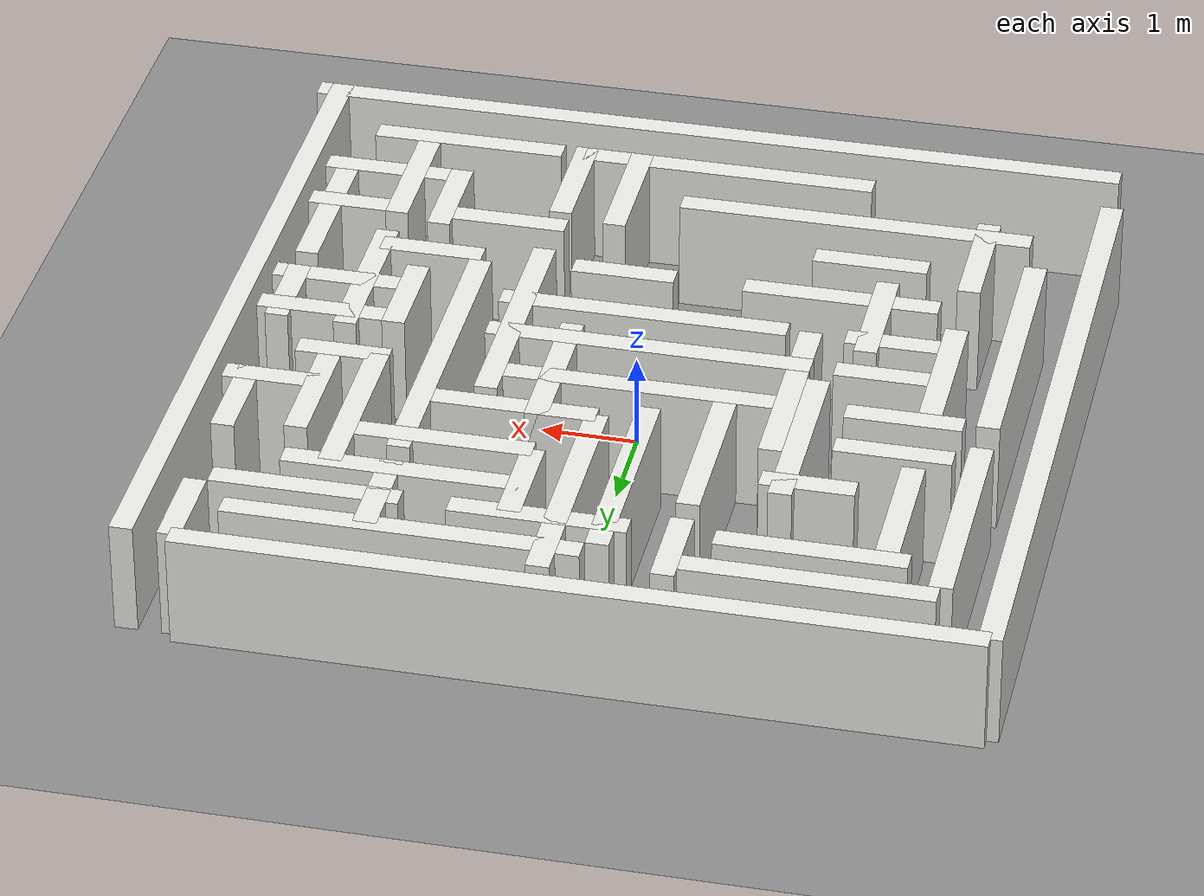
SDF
<sdf version="1.10">
 <world name="tugbot_maze_world_image_faithful">
  <plugin name="gz::sim::systems::Physics" filename="gz-sim-physics-system"/>
  <plugin name="gz::sim::systems::UserCommands" filename="gz-sim-user-commands-system"/>
  <plugin name="gz::sim::systems::SceneBroadcaster" filename="gz-sim-scene-broadcaster-system"/>
  <plugin name="gz::sim::systems::Sensors" filename="gz-sim-sensors-system">
   <render_engine>ogre2</render_engine>
  </plugin>
  <plugin name="gz::sim::systems::Imu" filename="gz-sim-imu-system"/>
  <scene>
   <shadows>false</shadows>
   <ambient>0.55 0.55 0.55 1</ambient>
   <background>0.70 0.72 0.74 1</background>
  </scene>
  <physics name="3ms" type="ode">
   <max_step_size>0.003</max_step_size>
   <real_time_factor>1</real_time_factor>
   <real_time_update_rate>1000</real_time_update_rate>
  </physics>
  <gravity>0 0 -9.8</gravity>
  <magnetic_field>5.5645e-06 2.28758e-05 -4.23884e-05</magnetic_field>
  <atmosphere type="adiabatic"/>
  <model name="ground_plane">
   <static>true</static>
   <link name="link">
    <collision name="collision">
     <geometry><plane><normal>0 0 1</normal><size>1 1</size></plane></geometry>
    </collision>
    <visual name="visual">
     <geometry><plane><normal>0 0 1</normal><size>20 20</size></plane></geometry>
     <material>
      <ambient>0.55 0.55 0.55 1</ambient>
      <diffuse>0.55 0.55 0.55 1</diffuse>
      <specular>0.2 0.2 0.2 1</specular>
     </material>
    </visual>
   </link>
  </model>
  <model name="maze_exit_marker">
   <static>true</static>
   <pose>4.000 3.000 0.01 0 0 0</pose>
   <link name="link">
    <visual name="visual">
     <geometry><cylinder><radius>0.30</radius><length>0.02</length></cylinder></geometry>
     <material><ambient>0 0.8 0.2 0.7</ambient><diffuse>0 0.8 0.2 0.7</diffuse></material>
    </visual>
   </link>
  </model>
  <model name="maze_wall_outer_001_outer_bottom">
   <static>true</static>
   <pose>0.060 -4.200 0.600 0 0 0</pose>
   <link name="link">
    <collision name="collision"><geometry><box><size>8.760 0.240 1.200</size></box></geometry></collision>
    <visual name="visual">
     <geometry><box><size>8.760 0.240 1.200</size></box></geometry>
     <material>
      <ambient>0.920 0.920 0.900 1.000</ambient>
      <diffuse>0.920 0.920 0.900 1.000</diffuse>
      <specular>0.2 0.2 0.2 1</specular>
     </material>
    </visual>
   </link>
  </model>
  <model name="maze_wall_outer_002_outer_top">
   <static>true</static>
   <pose>-0.300 4.200 0.600 0 0 0</pose>
   <link name="link">
    <collision name="collision"><geometry><box><size>8.040 0.240 1.200</size></box></geometry></collision>
    <visual name="visual">
     <geometry><box><size>8.040 0.240 1.200</size></box></geometry>
     <material>
      <ambient>0.920 0.920 0.900 1.000</ambient>
      <diffuse>0.920 0.920 0.900 1.000</diffuse>
      <specular>0.2 0.2 0.2 1</specular>
     </material>
    </visual>
   </link>
  </model>
  <model name="maze_wall_outer_003_outer_left">
   <static>true</static>
   <pose>-4.320 0.300 0.600 0 0 0</pose>
   <link name="link">
    <collision name="collision"><geometry><box><size>0.240 7.800 1.200</size></box></geometry></collision>
    <visual name="visual">
     <geometry><box><size>0.240 7.800 1.200</size></box></geometry>
     <material>
      <ambient>0.920 0.920 0.900 1.000</ambient>
      <diffuse>0.920 0.920 0.900 1.000</diffuse>
      <specular>0.2 0.2 0.2 1</specular>
     </material>
    </visual>
   </link>
  </model>
  <model name="maze_wall_outer_004_outer_right">
   <static>true</static>
   <pose>4.200 -0.060 0.600 0 0 0</pose>
   <link name="link">
    <collision name="collision"><geometry><box><size>0.240 8.520 1.200</size></box></geometry></collision>
    <visual name="visual">
     <geometry><box><size>0.240 8.520 1.200</size></box></geometry>
     <material>
      <ambient>0.920 0.920 0.900 1.000</ambient>
      <diffuse>0.920 0.920 0.900 1.000</diffuse>
      <specular>0.2 0.2 0.2 1</specular>
     </material>
    </visual>
   </link>
  </model>
  <model name="maze_wall_seg_005_h02_upper_left">
   <static>true</static>
   <pose>-2.460 3.600 0.600 0 0 0</pose>
   <link name="link">
    <collision name="collision"><geometry><box><size>2.520 0.240 1.200</size></box></geometry></collision>
    <visual name="visual">
     <geometry><box><size>2.520 0.240 1.200</size></box></geometry>
     <material>
      <ambient>0.920 0.920 0.900 1.000</ambient>
      <diffuse>0.920 0.920 0.900 1.000</diffuse>
      <specular>0.2 0.2 0.2 1</specular>
     </material>
    </visual>
   </link>
  </model>
  <model name="maze_wall_seg_006_h03_upper_right">
   <static>true</static>
   <pose>1.560 3.600 0.600 0 0 0</pose>
   <link name="link">
    <collision name="collision"><geometry><box><size>3.600 0.240 1.200</size></box></geometry></collision>
    <visual name="visual">
     <geometry><box><size>3.600 0.240 1.200</size></box></geometry>
     <material>
      <ambient>0.920 0.920 0.900 1.000</ambient>
      <diffuse>0.920 0.920 0.900 1.000</diffuse>
      <specular>0.2 0.2 0.2 1</specular>
     </material>
    </visual>
   </link>
  </model>
  <model name="maze_wall_seg_007_h04_left_upper_shelf">
   <static>true</static>
   <pose>-2.400 3.120 0.600 0 0 0</pose>
   <link name="link">
    <collision name="collision"><geometry><box><size>1.920 0.240 1.200</size></box></geometry></collision>
    <visual name="visual">
     <geometry><box><size>1.920 0.240 1.200</size></box></geometry>
     <material>
      <ambient>0.920 0.920 0.900 1.000</ambient>
      <diffuse>0.920 0.920 0.900 1.000</diffuse>
      <specular>0.2 0.2 0.2 1</specular>
     </material>
    </visual>
   </link>
  </model>
  <model name="maze_wall_seg_008_h05_upper_center_shelf">
   <static>true</static>
   <pose>0.300 3.120 0.600 0 0 0</pose>
   <link name="link">
    <collision name="collision"><geometry><box><size>1.800 0.240 1.200</size></box></geometry></collision>
    <visual name="visual">
     <geometry><box><size>1.800 0.240 1.200</size></box></geometry>
     <material>
      <ambient>0.920 0.920 0.900 1.000</ambient>
      <diffuse>0.920 0.920 0.900 1.000</diffuse>
      <specular>0.2 0.2 0.2 1</specular>
     </material>
    </visual>
   </link>
  </model>
  <model name="maze_wall_seg_009_h06_upper_right_shelf">
   <static>true</static>
   <pose>2.640 3.120 0.600 0 0 0</pose>
   <link name="link">
    <collision name="collision"><geometry><box><size>1.920 0.240 1.200</size></box></geometry></collision>
    <visual name="visual">
     <geometry><box><size>1.920 0.240 1.200</size></box></geometry>
     <material>
      <ambient>0.920 0.920 0.900 1.000</ambient>
      <diffuse>0.920 0.920 0.900 1.000</diffuse>
      <specular>0.2 0.2 0.2 1</specular>
     </material>
    </visual>
   </link>
  </model>
  <model name="maze_wall_seg_010_h08_upper_right_mid">
   <static>true</static>
   <pose>1.800 2.640 0.600 0 0 0</pose>
   <link name="link">
    <collision name="collision"><geometry><box><size>2.400 0.240 1.200</size></box></geometry></collision>
    <visual name="visual">
     <geometry><box><size>2.400 0.240 1.200</size></box></geometry>
     <material>
      <ambient>0.920 0.920 0.900 1.000</ambient>
      <diffuse>0.920 0.920 0.900 1.000</diffuse>
      <specular>0.2 0.2 0.2 1</specular>
     </material>
    </visual>
   </link>
  </model>
  <model name="maze_wall_seg_011_h10_left_center_short">
   <static>true</static>
   <pose>-2.160 2.040 0.600 0 0 0</pose>
   <link name="link">
    <collision name="collision"><geometry><box><size>0.960 0.240 1.200</size></box></geometry></collision>
    <visual name="visual">
     <geometry><box><size>0.960 0.240 1.200</size></box></geometry>
     <material>
      <ambient>0.920 0.920 0.900 1.000</ambient>
      <diffuse>0.920 0.920 0.900 1.000</diffuse>
      <specular>0.2 0.2 0.2 1</specular>
     </material>
    </visual>
   </link>
  </model>
  <model name="maze_wall_seg_012_h11_center_right_long">
   <static>true</static>
   <pose>1.620 2.040 0.600 0 0 0</pose>
   <link name="link">
    <collision name="collision"><geometry><box><size>2.040 0.240 1.200</size></box></geometry></collision>
    <visual name="visual">
     <geometry><box><size>2.040 0.240 1.200</size></box></geometry>
     <material>
      <ambient>0.920 0.920 0.900 1.000</ambient>
      <diffuse>0.920 0.920 0.900 1.000</diffuse>
      <specular>0.2 0.2 0.2 1</specular>
     </material>
    </visual>
   </link>
  </model>
  <model name="maze_wall_seg_013_h13_left_inner">
   <static>true</static>
   <pose>-2.880 1.320 0.600 0 0 0</pose>
   <link name="link">
    <collision name="collision"><geometry><box><size>1.200 0.240 1.200</size></box></geometry></collision>
    <visual name="visual">
     <geometry><box><size>1.200 0.240 1.200</size></box></geometry>
     <material>
      <ambient>0.920 0.920 0.900 1.000</ambient>
      <diffuse>0.920 0.920 0.900 1.000</diffuse>
      <specular>0.2 0.2 0.2 1</specular>
     </material>
    </visual>
   </link>
  </model>
  <model name="maze_wall_seg_014_h14_center">
   <static>true</static>
   <pose>0.960 1.320 0.600 0 0 0</pose>
   <link name="link">
    <collision name="collision"><geometry><box><size>1.680 0.240 1.200</size></box></geometry></collision>
    <visual name="visual">
     <geometry><box><size>1.680 0.240 1.200</size></box></geometry>
     <material>
      <ambient>0.920 0.920 0.900 1.000</ambient>
      <diffuse>0.920 0.920 0.900 1.000</diffuse>
      <specular>0.2 0.2 0.2 1</specular>
     </material>
    </visual>
   </link>
  </model>
  <model name="maze_wall_seg_015_h15_right_inner_shelf">
   <static>true</static>
   <pose>3.480 1.320 0.600 0 0 0</pose>
   <link name="link">
    <collision name="collision"><geometry><box><size>0.960 0.240 1.200</size></box></geometry></collision>
    <visual name="visual">
     <geometry><box><size>0.960 0.240 1.200</size></box></geometry>
     <material>
      <ambient>0.920 0.920 0.900 1.000</ambient>
      <diffuse>0.920 0.920 0.900 1.000</diffuse>
      <specular>0.2 0.2 0.2 1</specular>
     </material>
    </visual>
   </link>
  </model>
  <model name="maze_wall_seg_016_h16_left_middle_shelf">
   <static>true</static>
   <pose>-2.880 0.720 0.600 0 0 0</pose>
   <link name="link">
    <collision name="collision"><geometry><box><size>1.200 0.240 1.200</size></box></geometry></collision>
    <visual name="visual">
     <geometry><box><size>1.200 0.240 1.200</size></box></geometry>
     <material>
      <ambient>0.920 0.920 0.900 1.000</ambient>
      <diffuse>0.920 0.920 0.900 1.000</diffuse>
      <specular>0.2 0.2 0.2 1</specular>
     </material>
    </visual>
   </link>
  </model>
  <model name="maze_wall_seg_017_h17_central_long">
   <static>true</static>
   <pose>-0.180 0.720 0.600 0 0 0</pose>
   <link name="link">
    <collision name="collision"><geometry><box><size>2.760 0.240 1.200</size></box></geometry></collision>
    <visual name="visual">
     <geometry><box><size>2.760 0.240 1.200</size></box></geometry>
     <material>
      <ambient>0.920 0.920 0.900 1.000</ambient>
      <diffuse>0.920 0.920 0.900 1.000</diffuse>
      <specular>0.2 0.2 0.2 1</specular>
     </material>
    </visual>
   </link>
  </model>
  <model name="maze_wall_seg_018_h18_right_middle_short">
   <static>true</static>
   <pose>2.880 0.720 0.600 0 0 0</pose>
   <link name="link">
    <collision name="collision"><geometry><box><size>0.960 0.240 1.200</size></box></geometry></collision>
    <visual name="visual">
     <geometry><box><size>0.960 0.240 1.200</size></box></geometry>
     <material>
      <ambient>0.920 0.920 0.900 1.000</ambient>
      <diffuse>0.920 0.920 0.900 1.000</diffuse>
      <specular>0.2 0.2 0.2 1</specular>
     </material>
    </visual>
   </link>
  </model>
  <model name="maze_wall_seg_019_h19_left_middle_short">
   <static>true</static>
   <pose>-2.520 0.000 0.600 0 0 0</pose>
   <link name="link">
    <collision name="collision"><geometry><box><size>0.960 0.240 1.200</size></box></geometry></collision>
    <visual name="visual">
     <geometry><box><size>0.960 0.240 1.200</size></box></geometry>
     <material>
      <ambient>0.920 0.920 0.900 1.000</ambient>
      <diffuse>0.920 0.920 0.900 1.000</diffuse>
      <specular>0.2 0.2 0.2 1</specular>
     </material>
    </visual>
   </link>
  </model>
  <model name="maze_wall_seg_020_h20_main_central">
   <static>true</static>
   <pose>-0.120 0.000 0.600 0 0 0</pose>
   <link name="link">
    <collision name="collision"><geometry><box><size>3.360 0.240 1.200</size></box></geometry></collision>
    <visual name="visual">
     <geometry><box><size>3.360 0.240 1.200</size></box></geometry>
     <material>
      <ambient>0.920 0.920 0.900 1.000</ambient>
      <diffuse>0.920 0.920 0.900 1.000</diffuse>
      <specular>0.2 0.2 0.2 1</specular>
     </material>
    </visual>
   </link>
  </model>
  <model name="maze_wall_seg_021_h21_right_middle">
   <static>true</static>
   <pose>3.300 0.000 0.600 0 0 0</pose>
   <link name="link">
    <collision name="collision"><geometry><box><size>1.320 0.240 1.200</size></box></geometry></collision>
    <visual name="visual">
     <geometry><box><size>1.320 0.240 1.200</size></box></geometry>
     <material>
      <ambient>0.920 0.920 0.900 1.000</ambient>
      <diffuse>0.920 0.920 0.900 1.000</diffuse>
      <specular>0.2 0.2 0.2 1</specular>
     </material>
    </visual>
   </link>
  </model>
  <model name="maze_wall_seg_022_h22_left_lower_middle">
   <static>true</static>
   <pose>-2.520 -0.600 0.600 0 0 0</pose>
   <link name="link">
    <collision name="collision"><geometry><box><size>0.960 0.240 1.200</size></box></geometry></collision>
    <visual name="visual">
     <geometry><box><size>0.960 0.240 1.200</size></box></geometry>
     <material>
      <ambient>0.920 0.920 0.900 1.000</ambient>
      <diffuse>0.920 0.920 0.900 1.000</diffuse>
      <specular>0.2 0.2 0.2 1</specular>
     </material>
    </visual>
   </link>
  </model>
  <model name="maze_wall_seg_023_h23_central_lower_shelf">
   <static>true</static>
   <pose>0.060 -0.600 0.600 0 0 0</pose>
   <link name="link">
    <collision name="collision"><geometry><box><size>3.000 0.240 1.200</size></box></geometry></collision>
    <visual name="visual">
     <geometry><box><size>3.000 0.240 1.200</size></box></geometry>
     <material>
      <ambient>0.920 0.920 0.900 1.000</ambient>
      <diffuse>0.920 0.920 0.900 1.000</diffuse>
      <specular>0.2 0.2 0.2 1</specular>
     </material>
    </visual>
   </link>
  </model>
  <model name="maze_wall_seg_024_h24_right_lower_middle">
   <static>true</static>
   <pose>3.300 -0.600 0.600 0 0 0</pose>
   <link name="link">
    <collision name="collision"><geometry><box><size>1.320 0.240 1.200</size></box></geometry></collision>
    <visual name="visual">
     <geometry><box><size>1.320 0.240 1.200</size></box></geometry>
     <material>
      <ambient>0.920 0.920 0.900 1.000</ambient>
      <diffuse>0.920 0.920 0.900 1.000</diffuse>
      <specular>0.2 0.2 0.2 1</specular>
     </material>
    </visual>
   </link>
  </model>
  <model name="maze_wall_seg_025_h25_lower_left_interior">
   <static>true</static>
   <pose>-1.860 -1.320 0.600 0 0 0</pose>
   <link name="link">
    <collision name="collision"><geometry><box><size>2.040 0.240 1.200</size></box></geometry></collision>
    <visual name="visual">
     <geometry><box><size>2.040 0.240 1.200</size></box></geometry>
     <material>
      <ambient>0.920 0.920 0.900 1.000</ambient>
      <diffuse>0.920 0.920 0.900 1.000</diffuse>
      <specular>0.2 0.2 0.2 1</specular>
     </material>
    </visual>
   </link>
  </model>
  <model name="maze_wall_seg_026_h26_center_short">
   <static>true</static>
   <pose>0.420 -1.320 0.600 0 0 0</pose>
   <link name="link">
    <collision name="collision"><geometry><box><size>1.080 0.240 1.200</size></box></geometry></collision>
    <visual name="visual">
     <geometry><box><size>1.080 0.240 1.200</size></box></geometry>
     <material>
      <ambient>0.920 0.920 0.900 1.000</ambient>
      <diffuse>0.920 0.920 0.900 1.000</diffuse>
      <specular>0.2 0.2 0.2 1</specular>
     </material>
    </visual>
   </link>
  </model>
  <model name="maze_wall_seg_027_h27_lower_right_shelf">
   <static>true</static>
   <pose>2.460 -1.320 0.600 0 0 0</pose>
   <link name="link">
    <collision name="collision"><geometry><box><size>1.080 0.240 1.200</size></box></geometry></collision>
    <visual name="visual">
     <geometry><box><size>1.080 0.240 1.200</size></box></geometry>
     <material>
      <ambient>0.920 0.920 0.900 1.000</ambient>
      <diffuse>0.920 0.920 0.900 1.000</diffuse>
      <specular>0.2 0.2 0.2 1</specular>
     </material>
    </visual>
   </link>
  </model>
  <model name="maze_wall_seg_028_h28_lower_left_short">
   <static>true</static>
   <pose>-2.040 -2.040 0.600 0 0 0</pose>
   <link name="link">
    <collision name="collision"><geometry><box><size>1.200 0.240 1.200</size></box></geometry></collision>
    <visual name="visual">
     <geometry><box><size>1.200 0.240 1.200</size></box></geometry>
     <material>
      <ambient>0.920 0.920 0.900 1.000</ambient>
      <diffuse>0.920 0.920 0.900 1.000</diffuse>
      <specular>0.2 0.2 0.2 1</specular>
     </material>
    </visual>
   </link>
  </model>
  <model name="maze_wall_seg_029_h30_lower_center_right">
   <static>true</static>
   <pose>1.800 -2.040 0.600 0 0 0</pose>
   <link name="link">
    <collision name="collision"><geometry><box><size>1.200 0.240 1.200</size></box></geometry></collision>
    <visual name="visual">
     <geometry><box><size>1.200 0.240 1.200</size></box></geometry>
     <material>
      <ambient>0.920 0.920 0.900 1.000</ambient>
      <diffuse>0.920 0.920 0.900 1.000</diffuse>
      <specular>0.2 0.2 0.2 1</specular>
     </material>
    </visual>
   </link>
  </model>
  <model name="maze_wall_seg_030_h31_right_lower_short">
   <static>true</static>
   <pose>3.480 -2.040 0.600 0 0 0</pose>
   <link name="link">
    <collision name="collision"><geometry><box><size>0.960 0.240 1.200</size></box></geometry></collision>
    <visual name="visual">
     <geometry><box><size>0.960 0.240 1.200</size></box></geometry>
     <material>
      <ambient>0.920 0.920 0.900 1.000</ambient>
      <diffuse>0.920 0.920 0.900 1.000</diffuse>
      <specular>0.2 0.2 0.2 1</specular>
     </material>
    </visual>
   </link>
  </model>
  <model name="maze_wall_seg_031_h32_long_lower_left">
   <static>true</static>
   <pose>-1.740 -2.760 0.600 0 0 0</pose>
   <link name="link">
    <collision name="collision"><geometry><box><size>3.720 0.240 1.200</size></box></geometry></collision>
    <visual name="visual">
     <geometry><box><size>3.720 0.240 1.200</size></box></geometry>
     <material>
      <ambient>0.920 0.920 0.900 1.000</ambient>
      <diffuse>0.920 0.920 0.900 1.000</diffuse>
      <specular>0.2 0.2 0.2 1</specular>
     </material>
    </visual>
   </link>
  </model>
  <model name="maze_wall_seg_032_h33_lower_right">
   <static>true</static>
   <pose>3.300 -2.760 0.600 0 0 0</pose>
   <link name="link">
    <collision name="collision"><geometry><box><size>1.320 0.240 1.200</size></box></geometry></collision>
    <visual name="visual">
     <geometry><box><size>1.320 0.240 1.200</size></box></geometry>
     <material>
      <ambient>0.920 0.920 0.900 1.000</ambient>
      <diffuse>0.920 0.920 0.900 1.000</diffuse>
      <specular>0.2 0.2 0.2 1</specular>
     </material>
    </visual>
   </link>
  </model>
  <model name="maze_wall_seg_033_h35_lower_central">
   <static>true</static>
   <pose>-0.240 -3.480 0.600 0 0 0</pose>
   <link name="link">
    <collision name="collision"><geometry><box><size>3.120 0.240 1.200</size></box></geometry></collision>
    <visual name="visual">
     <geometry><box><size>3.120 0.240 1.200</size></box></geometry>
     <material>
      <ambient>0.920 0.920 0.900 1.000</ambient>
      <diffuse>0.920 0.920 0.900 1.000</diffuse>
      <specular>0.2 0.2 0.2 1</specular>
     </material>
    </visual>
   </link>
  </model>
  <model name="maze_wall_seg_034_h36_lower_right">
   <static>true</static>
   <pose>2.580 -3.480 0.600 0 0 0</pose>
   <link name="link">
    <collision name="collision"><geometry><box><size>2.040 0.240 1.200</size></box></geometry></collision>
    <visual name="visual">
     <geometry><box><size>2.040 0.240 1.200</size></box></geometry>
     <material>
      <ambient>0.920 0.920 0.900 1.000</ambient>
      <diffuse>0.920 0.920 0.900 1.000</diffuse>
      <specular>0.2 0.2 0.2 1</specular>
     </material>
    </visual>
   </link>
  </model>
  <model name="maze_wall_seg_035_v02_left_upper_side">
   <static>true</static>
   <pose>-3.720 2.280 0.600 0 0 0</pose>
   <link name="link">
    <collision name="collision"><geometry><box><size>0.240 2.400 1.200</size></box></geometry></collision>
    <visual name="visual">
     <geometry><box><size>0.240 2.400 1.200</size></box></geometry>
     <material>
      <ambient>0.920 0.920 0.900 1.000</ambient>
      <diffuse>0.920 0.920 0.900 1.000</diffuse>
      <specular>0.2 0.2 0.2 1</specular>
     </material>
    </visual>
   </link>
  </model>
  <model name="maze_wall_seg_036_v03_long_left_middle">
   <static>true</static>
   <pose>-3.720 -0.780 0.600 0 0 0</pose>
   <link name="link">
    <collision name="collision"><geometry><box><size>0.240 3.000 1.200</size></box></geometry></collision>
    <visual name="visual">
     <geometry><box><size>0.240 3.000 1.200</size></box></geometry>
     <material>
      <ambient>0.920 0.920 0.900 1.000</ambient>
      <diffuse>0.920 0.920 0.900 1.000</diffuse>
      <specular>0.2 0.2 0.2 1</specular>
     </material>
    </visual>
   </link>
  </model>
  <model name="maze_wall_seg_037_v04_upper_left_inner">
   <static>true</static>
   <pose>-3.120 2.280 0.600 0 0 0</pose>
   <link name="link">
    <collision name="collision"><geometry><box><size>0.240 1.440 1.200</size></box></geometry></collision>
    <visual name="visual">
     <geometry><box><size>0.240 1.440 1.200</size></box></geometry>
     <material>
      <ambient>0.920 0.920 0.900 1.000</ambient>
      <diffuse>0.920 0.920 0.900 1.000</diffuse>
      <specular>0.2 0.2 0.2 1</specular>
     </material>
    </visual>
   </link>
  </model>
  <model name="maze_wall_seg_038_v05_left_middle_inner">
   <static>true</static>
   <pose>-3.120 -0.120 0.600 0 0 0</pose>
   <link name="link">
    <collision name="collision"><geometry><box><size>0.240 1.680 1.200</size></box></geometry></collision>
    <visual name="visual">
     <geometry><box><size>0.240 1.680 1.200</size></box></geometry>
     <material>
      <ambient>0.920 0.920 0.900 1.000</ambient>
      <diffuse>0.920 0.920 0.900 1.000</diffuse>
      <specular>0.2 0.2 0.2 1</specular>
     </material>
    </visual>
   </link>
  </model>
  <model name="maze_wall_seg_039_v06_lower_left_inner">
   <static>true</static>
   <pose>-3.120 -2.340 0.600 0 0 0</pose>
   <link name="link">
    <collision name="collision"><geometry><box><size>0.240 1.320 1.200</size></box></geometry></collision>
    <visual name="visual">
     <geometry><box><size>0.240 1.320 1.200</size></box></geometry>
     <material>
      <ambient>0.920 0.920 0.900 1.000</ambient>
      <diffuse>0.920 0.920 0.900 1.000</diffuse>
      <specular>0.2 0.2 0.2 1</specular>
     </material>
    </visual>
   </link>
  </model>
  <model name="maze_wall_seg_040_v08_lower_left_middle">
   <static>true</static>
   <pose>-2.280 -1.020 0.600 0 0 0</pose>
   <link name="link">
    <collision name="collision"><geometry><box><size>0.240 1.320 1.200</size></box></geometry></collision>
    <visual name="visual">
     <geometry><box><size>0.240 1.320 1.200</size></box></geometry>
     <material>
      <ambient>0.920 0.920 0.900 1.000</ambient>
      <diffuse>0.920 0.920 0.900 1.000</diffuse>
      <specular>0.2 0.2 0.2 1</specular>
     </material>
    </visual>
   </link>
  </model>
  <model name="maze_wall_seg_041_v09_central_left">
   <static>true</static>
   <pose>-1.920 1.260 0.600 0 0 0</pose>
   <link name="link">
    <collision name="collision"><geometry><box><size>0.240 2.040 1.200</size></box></geometry></collision>
    <visual name="visual">
     <geometry><box><size>0.240 2.040 1.200</size></box></geometry>
     <material>
      <ambient>0.920 0.920 0.900 1.000</ambient>
      <diffuse>0.920 0.920 0.900 1.000</diffuse>
      <specular>0.2 0.2 0.2 1</specular>
     </material>
    </visual>
   </link>
  </model>
  <model name="maze_wall_seg_042_v10_left_central_long">
   <static>true</static>
   <pose>-1.680 0.480 0.600 0 0 0</pose>
   <link name="link">
    <collision name="collision"><geometry><box><size>0.240 2.160 1.200</size></box></geometry></collision>
    <visual name="visual">
     <geometry><box><size>0.240 2.160 1.200</size></box></geometry>
     <material>
      <ambient>0.920 0.920 0.900 1.000</ambient>
      <diffuse>0.920 0.920 0.900 1.000</diffuse>
      <specular>0.2 0.2 0.2 1</specular>
     </material>
    </visual>
   </link>
  </model>
  <model name="maze_wall_seg_043_v11_upper_left_divider">
   <static>true</static>
   <pose>-1.080 3.360 0.600 0 0 0</pose>
   <link name="link">
    <collision name="collision"><geometry><box><size>0.240 0.960 1.200</size></box></geometry></collision>
    <visual name="visual">
     <geometry><box><size>0.240 0.960 1.200</size></box></geometry>
     <material>
      <ambient>0.920 0.920 0.900 1.000</ambient>
      <diffuse>0.920 0.920 0.900 1.000</diffuse>
      <specular>0.2 0.2 0.2 1</specular>
     </material>
    </visual>
   </link>
  </model>
  <model name="maze_wall_seg_044_v12_central_left_divider">
   <static>true</static>
   <pose>-1.080 1.740 0.600 0 0 0</pose>
   <link name="link">
    <collision name="collision"><geometry><box><size>0.240 1.800 1.200</size></box></geometry></collision>
    <visual name="visual">
     <geometry><box><size>0.240 1.800 1.200</size></box></geometry>
     <material>
      <ambient>0.920 0.920 0.900 1.000</ambient>
      <diffuse>0.920 0.920 0.900 1.000</diffuse>
      <specular>0.2 0.2 0.2 1</specular>
     </material>
    </visual>
   </link>
  </model>
  <model name="maze_wall_seg_045_v13_main_central_upper">
   <static>true</static>
   <pose>-0.360 2.280 0.600 0 0 0</pose>
   <link name="link">
    <collision name="collision"><geometry><box><size>0.240 2.400 1.200</size></box></geometry></collision>
    <visual name="visual">
     <geometry><box><size>0.240 2.400 1.200</size></box></geometry>
     <material>
      <ambient>0.920 0.920 0.900 1.000</ambient>
      <diffuse>0.920 0.920 0.900 1.000</diffuse>
      <specular>0.2 0.2 0.2 1</specular>
     </material>
    </visual>
   </link>
  </model>
  <model name="maze_wall_seg_046_v14_central_upper_spine">
   <static>true</static>
   <pose>0.120 2.640 0.600 0 0 0</pose>
   <link name="link">
    <collision name="collision"><geometry><box><size>0.240 2.640 1.200</size></box></geometry></collision>
    <visual name="visual">
     <geometry><box><size>0.240 2.640 1.200</size></box></geometry>
     <material>
      <ambient>0.920 0.920 0.900 1.000</ambient>
      <diffuse>0.920 0.920 0.900 1.000</diffuse>
      <specular>0.2 0.2 0.2 1</specular>
     </material>
    </visual>
   </link>
  </model>
  <model name="maze_wall_seg_047_v15_upper_center">
   <static>true</static>
   <pose>0.600 2.580 0.600 0 0 0</pose>
   <link name="link">
    <collision name="collision"><geometry><box><size>0.240 1.080 1.200</size></box></geometry></collision>
    <visual name="visual">
     <geometry><box><size>0.240 1.080 1.200</size></box></geometry>
     <material>
      <ambient>0.920 0.920 0.900 1.000</ambient>
      <diffuse>0.920 0.920 0.900 1.000</diffuse>
      <specular>0.2 0.2 0.2 1</specular>
     </material>
    </visual>
   </link>
  </model>
  <model name="maze_wall_seg_048_v16_central_drop">
   <static>true</static>
   <pose>0.720 0.600 0.600 0 0 0</pose>
   <link name="link">
    <collision name="collision"><geometry><box><size>0.240 1.680 1.200</size></box></geometry></collision>
    <visual name="visual">
     <geometry><box><size>0.240 1.680 1.200</size></box></geometry>
     <material>
      <ambient>0.920 0.920 0.900 1.000</ambient>
      <diffuse>0.920 0.920 0.900 1.000</diffuse>
      <specular>0.2 0.2 0.2 1</specular>
     </material>
    </visual>
   </link>
  </model>
  <model name="maze_wall_seg_049_v17_lower_center">
   <static>true</static>
   <pose>0.720 -2.880 0.600 0 0 0</pose>
   <link name="link">
    <collision name="collision"><geometry><box><size>0.240 1.440 1.200</size></box></geometry></collision>
    <visual name="visual">
     <geometry><box><size>0.240 1.440 1.200</size></box></geometry>
     <material>
      <ambient>0.920 0.920 0.900 1.000</ambient>
      <diffuse>0.920 0.920 0.900 1.000</diffuse>
      <specular>0.2 0.2 0.2 1</specular>
     </material>
    </visual>
   </link>
  </model>
  <model name="maze_wall_seg_050_v18_central_right">
   <static>true</static>
   <pose>1.320 -0.240 0.600 0 0 0</pose>
   <link name="link">
    <collision name="collision"><geometry><box><size>0.240 2.640 1.200</size></box></geometry></collision>
    <visual name="visual">
     <geometry><box><size>0.240 2.640 1.200</size></box></geometry>
     <material>
      <ambient>0.920 0.920 0.900 1.000</ambient>
      <diffuse>0.920 0.920 0.900 1.000</diffuse>
      <specular>0.2 0.2 0.2 1</specular>
     </material>
    </visual>
   </link>
  </model>
  <model name="maze_wall_seg_051_v19_lower_center_right">
   <static>true</static>
   <pose>1.320 -2.940 0.600 0 0 0</pose>
   <link name="link">
    <collision name="collision"><geometry><box><size>0.240 1.320 1.200</size></box></geometry></collision>
    <visual name="visual">
     <geometry><box><size>0.240 1.320 1.200</size></box></geometry>
     <material>
      <ambient>0.920 0.920 0.900 1.000</ambient>
      <diffuse>0.920 0.920 0.900 1.000</diffuse>
      <specular>0.2 0.2 0.2 1</specular>
     </material>
    </visual>
   </link>
  </model>
  <model name="maze_wall_seg_052_v20_upper_right">
   <static>true</static>
   <pose>1.920 3.060 0.600 0 0 0</pose>
   <link name="link">
    <collision name="collision"><geometry><box><size>0.240 1.080 1.200</size></box></geometry></collision>
    <visual name="visual">
     <geometry><box><size>0.240 1.080 1.200</size></box></geometry>
     <material>
      <ambient>0.920 0.920 0.900 1.000</ambient>
      <diffuse>0.920 0.920 0.900 1.000</diffuse>
      <specular>0.2 0.2 0.2 1</specular>
     </material>
    </visual>
   </link>
  </model>
  <model name="maze_wall_seg_053_v21_main_right_center">
   <static>true</static>
   <pose>1.920 0.540 0.600 0 0 0</pose>
   <link name="link">
    <collision name="collision"><geometry><box><size>0.240 3.480 1.200</size></box></geometry></collision>
    <visual name="visual">
     <geometry><box><size>0.240 3.480 1.200</size></box></geometry>
     <material>
      <ambient>0.920 0.920 0.900 1.000</ambient>
      <diffuse>0.920 0.920 0.900 1.000</diffuse>
      <specular>0.2 0.2 0.2 1</specular>
     </material>
    </visual>
   </link>
  </model>
  <model name="maze_wall_seg_054_v22_right_center">
   <static>true</static>
   <pose>2.520 1.680 0.600 0 0 0</pose>
   <link name="link">
    <collision name="collision"><geometry><box><size>0.240 1.920 1.200</size></box></geometry></collision>
    <visual name="visual">
     <geometry><box><size>0.240 1.920 1.200</size></box></geometry>
     <material>
      <ambient>0.920 0.920 0.900 1.000</ambient>
      <diffuse>0.920 0.920 0.900 1.000</diffuse>
      <specular>0.2 0.2 0.2 1</specular>
     </material>
    </visual>
   </link>
  </model>
  <model name="maze_wall_seg_055_v23_right_middle">
   <static>true</static>
   <pose>2.520 -0.420 0.600 0 0 0</pose>
   <link name="link">
    <collision name="collision"><geometry><box><size>0.240 1.080 1.200</size></box></geometry></collision>
    <visual name="visual">
     <geometry><box><size>0.240 1.080 1.200</size></box></geometry>
     <material>
      <ambient>0.920 0.920 0.900 1.000</ambient>
      <diffuse>0.920 0.920 0.900 1.000</diffuse>
      <specular>0.2 0.2 0.2 1</specular>
     </material>
    </visual>
   </link>
  </model>
  <model name="maze_wall_seg_056_v24_lower_right_inner">
   <static>true</static>
   <pose>2.520 -2.340 0.600 0 0 0</pose>
   <link name="link">
    <collision name="collision"><geometry><box><size>0.240 1.080 1.200</size></box></geometry></collision>
    <visual name="visual">
     <geometry><box><size>0.240 1.080 1.200</size></box></geometry>
     <material>
      <ambient>0.920 0.920 0.900 1.000</ambient>
      <diffuse>0.920 0.920 0.900 1.000</diffuse>
      <specular>0.2 0.2 0.2 1</specular>
     </material>
    </visual>
   </link>
  </model>
  <model name="maze_wall_seg_057_v25_upper_right_internal">
   <static>true</static>
   <pose>3.000 1.500 0.600 0 0 0</pose>
   <link name="link">
    <collision name="collision"><geometry><box><size>0.240 1.320 1.200</size></box></geometry></collision>
    <visual name="visual">
     <geometry><box><size>0.240 1.320 1.200</size></box></geometry>
     <material>
      <ambient>0.920 0.920 0.900 1.000</ambient>
      <diffuse>0.920 0.920 0.900 1.000</diffuse>
      <specular>0.2 0.2 0.2 1</specular>
     </material>
    </visual>
   </link>
  </model>
  <model name="maze_wall_seg_058_v26_right_middle_internal">
   <static>true</static>
   <pose>3.000 -0.660 0.600 0 0 0</pose>
   <link name="link">
    <collision name="collision"><geometry><box><size>0.240 1.800 1.200</size></box></geometry></collision>
    <visual name="visual">
     <geometry><box><size>0.240 1.800 1.200</size></box></geometry>
     <material>
      <ambient>0.920 0.920 0.900 1.000</ambient>
      <diffuse>0.920 0.920 0.900 1.000</diffuse>
      <specular>0.2 0.2 0.2 1</specular>
     </material>
    </visual>
   </link>
  </model>
  <model name="maze_wall_seg_059_v27_lower_right_internal">
   <static>true</static>
   <pose>3.000 -2.640 0.600 0 0 0</pose>
   <link name="link">
    <collision name="collision"><geometry><box><size>0.240 1.440 1.200</size></box></geometry></collision>
    <visual name="visual">
     <geometry><box><size>0.240 1.440 1.200</size></box></geometry>
     <material>
      <ambient>0.920 0.920 0.900 1.000</ambient>
      <diffuse>0.920 0.920 0.900 1.000</diffuse>
      <specular>0.2 0.2 0.2 1</specular>
     </material>
    </visual>
   </link>
  </model>
  <model name="maze_wall_seg_060_v28_upper_right_corner">
   <static>true</static>
   <pose>3.720 3.720 0.600 0 0 0</pose>
   <link name="link">
    <collision name="collision"><geometry><box><size>0.240 0.960 1.200</size></box></geometry></collision>
    <visual name="visual">
     <geometry><box><size>0.240 0.960 1.200</size></box></geometry>
     <material>
      <ambient>0.920 0.920 0.900 1.000</ambient>
      <diffuse>0.920 0.920 0.900 1.000</diffuse>
      <specular>0.2 0.2 0.2 1</specular>
     </material>
    </visual>
   </link>
  </model>
  <model name="maze_wall_seg_061_v29_right_upper_inner">
   <static>true</static>
   <pose>3.720 1.740 0.600 0 0 0</pose>
   <link name="link">
    <collision name="collision"><geometry><box><size>0.240 1.080 1.200</size></box></geometry></collision>
    <visual name="visual">
     <geometry><box><size>0.240 1.080 1.200</size></box></geometry>
     <material>
      <ambient>0.920 0.920 0.900 1.000</ambient>
      <diffuse>0.920 0.920 0.900 1.000</diffuse>
      <specular>0.2 0.2 0.2 1</specular>
     </material>
    </visual>
   </link>
  </model>
  <model name="maze_wall_seg_062_v30_right_middle_inner">
   <static>true</static>
   <pose>3.720 -0.240 0.600 0 0 0</pose>
   <link name="link">
    <collision name="collision"><geometry><box><size>0.240 0.960 1.200</size></box></geometry></collision>
    <visual name="visual">
     <geometry><box><size>0.240 0.960 1.200</size></box></geometry>
     <material>
      <ambient>0.920 0.920 0.900 1.000</ambient>
      <diffuse>0.920 0.920 0.900 1.000</diffuse>
      <specular>0.2 0.2 0.2 1</specular>
     </material>
    </visual>
   </link>
  </model>
  <model name="maze_wall_seg_063_v31_right_lower_inner">
   <static>true</static>
   <pose>3.720 -1.800 0.600 0 0 0</pose>
   <link name="link">
    <collision name="collision"><geometry><box><size>0.240 1.680 1.200</size></box></geometry></collision>
    <visual name="visual">
     <geometry><box><size>0.240 1.680 1.200</size></box></geometry>
     <material>
      <ambient>0.920 0.920 0.900 1.000</ambient>
      <diffuse>0.920 0.920 0.900 1.000</diffuse>
      <specular>0.2 0.2 0.2 1</specular>
     </material>
    </visual>
   </link>
  </model>
  <light name="sun" type="directional">
   <cast_shadows>false</cast_shadows>
   <pose>0 0 10 0 0 0</pose>
   <diffuse>0.8 0.8 0.8 1</diffuse>
   <specular>0.2 0.2 0.2 1</specular>
   <attenuation>
    <range>1000</range>
    <constant>0.9</constant>
    <linear>0.01</linear>
    <quadratic>0.001</quadratic>
   </attenuation>
   <direction>-0.5 0.1 -0.9</direction>
  </light>
 </world>
</sdf>
